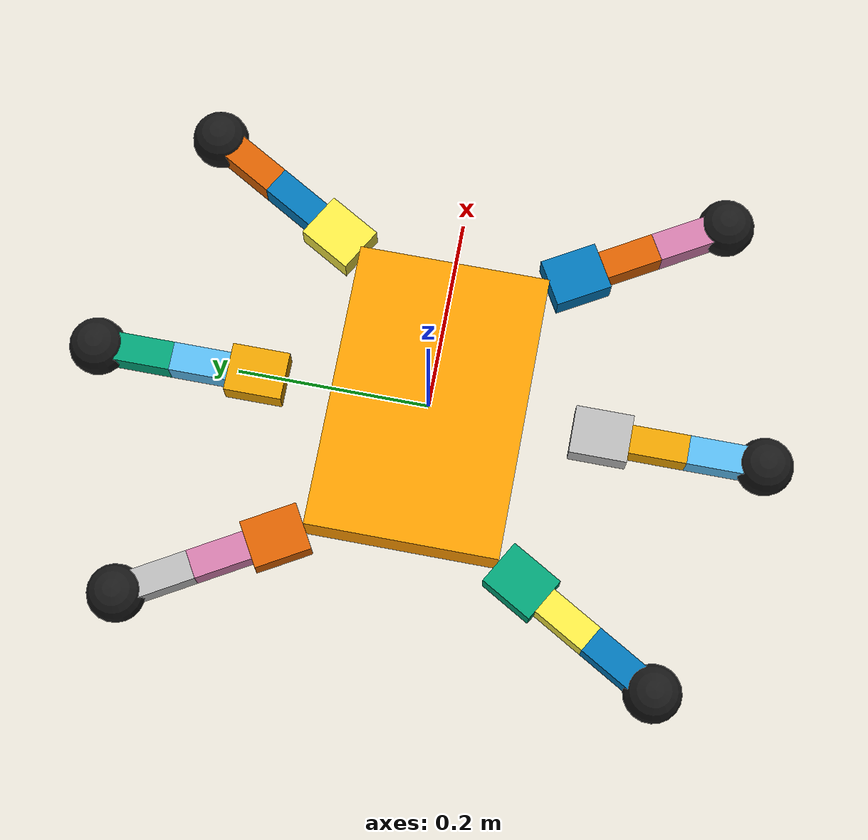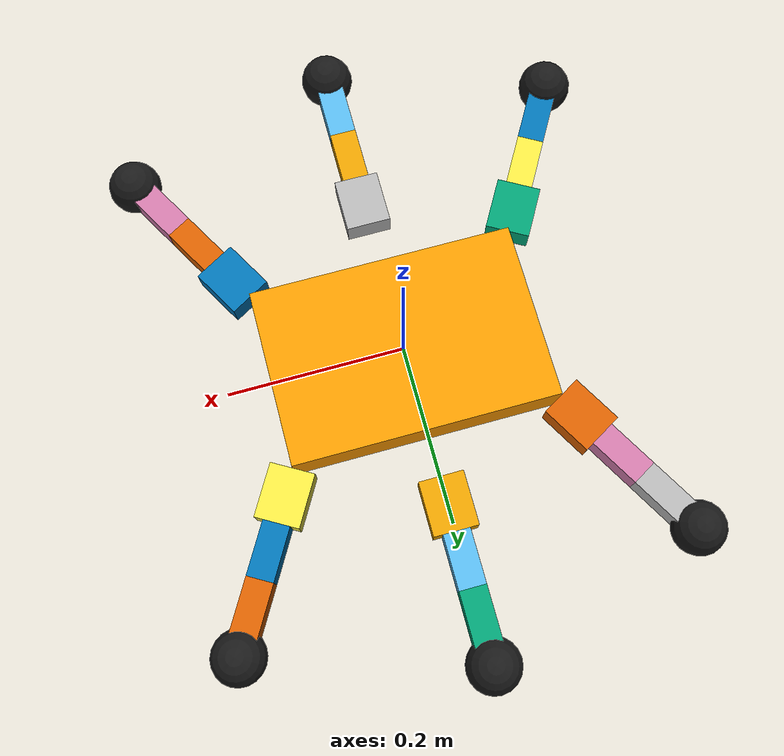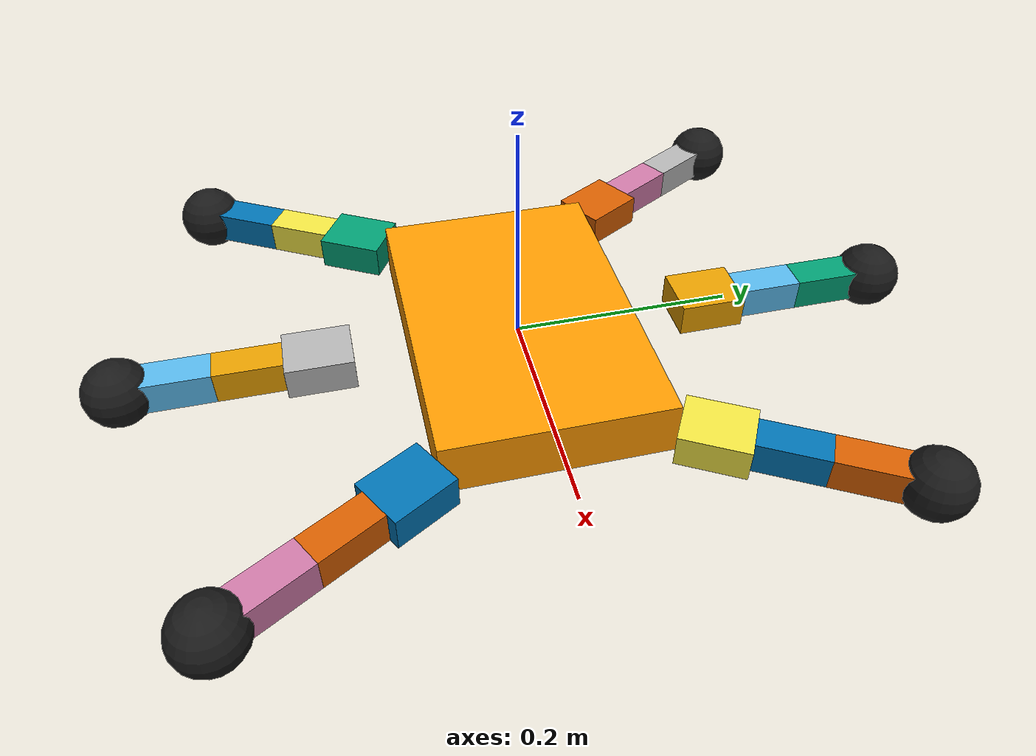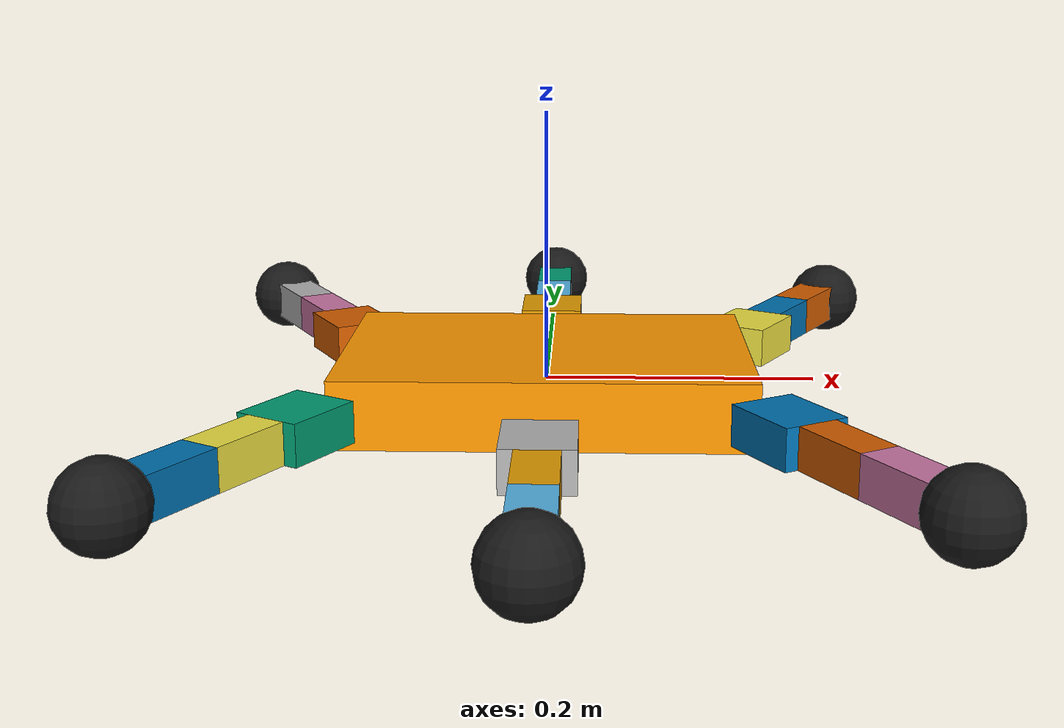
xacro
<?xml version="1.0"?>
<robot name="hexapod" xmlns:xacro="http://wiki.ros.org/xacro">
  <xacro:include filename="$(find robot_description)/properties.urdf.xacro" />

  <!-- base_footprint -->
  <link name="base_footprint" />
  <joint name="base_footprint_joint" type="fixed">
    <parent link="base_footprint" />
    <child link="base_link" />
  </joint>

  <!-- base_link -->
  <link name="base_link">
    <visual>
      <origin xyz="0 0 0" />
      <geometry>
        <box size="0.300 0.200 0.050" />
      </geometry>
      <material name="frame" />
    </visual>
    <collision>
      <geometry>
        <box size="0.300 0.200 0.050" />
      </geometry>
    </collision>
    <inertial>
      <mass value="0.300" />
      <origin xyz="0 0 0" />
      <inertia ixx="0.0021" iyy="0.0046" izz="0.0065"
               ixy="0" ixz="0" iyz="0" />
    </inertial>
  </link>

  <!-- legs -->
  <xacro:macro name="servo" params="index joint_name">
    <gazebo>
      <plugin
        filename="gz-sim-joint-position-controller-system"
        name="gz::sim::systems::JointPositionController">
        <joint_name>${joint_name}</joint_name>
        <use_actuator_msg>true</use_actuator_msg>
        <actuator_number>${index}</actuator_number>
        <cmd_max>${servo_effort_limit}</cmd_max>
        <cmd_min>${-servo_effort_limit}</cmd_min>
        <p_gain>${servo_p_gain}</p_gain>
        <i_gain>0.</i_gain>
        <d_gain>0.</d_gain>
      </plugin>
    </gazebo>
  </xacro:macro>
  <xacro:macro name="leg" params="index reflect xyz rpy">
    <!-- leg_X: fixed to base_link -->
    <!-- TODO for Gazebo add inertial if whole link gets ignored -->
    <link name="leg_${index}" />
    <joint name="base_link__leg_${index}" type="fixed">
      <parent link="base_link" />
      <child link="leg_${index}" />
      <origin xyz="${xyz}" rpy="${rpy}" />
    </joint>

    <!-- leg_Xa: shoulder  -->
    <link name="leg_${index}a">
      <visual>
        <origin xyz="0 ${leg_a_length/2*reflect} 0" />
        <geometry>
          <box size="0.05 ${leg_a_length} 0.03" />
        </geometry>
      </visual>
      <inertial>
        <mass value="0.100" />
        <origin xyz="0 ${leg_a_length/2*reflect} 0" />
        <inertia ixx="0.000028" iyy="0.000028" izz="0.000028"
                 ixy="0"        ixz="0"        iyz="0" />
      </inertial>
    </link>
    <joint name="leg_${index}_base__leg_${index}a" type="revolute">
      <axis xyz="0 0 1" />
      <xacro:if value="${reflect == 1}">
        <limit lower="${joint_a_limit_lower}" upper="${joint_a_limit_upper}"
            effort="${servo_effort_limit}" velocity="${servo_velocity_limit}" />
      </xacro:if>
      <xacro:unless value="${reflect == 1}">
        <limit lower="${-joint_a_limit_upper}" upper="${-joint_a_limit_lower}"
            effort="${servo_effort_limit}" velocity="${servo_velocity_limit}" />
      </xacro:unless>
      <parent link="leg_${index}" />
      <child link="leg_${index}a" />
      <dynamics friction="${servo_static_friction}" damping="${servo_damping_friction}" />
    </joint>
    <!-- leg_Xb: upper segment -->
    <link name="leg_${index}b">
      <visual>
        <origin xyz="0 ${leg_b_length/2*reflect} 0" />
        <geometry>
          <box size="0.03 ${leg_b_length} 0.03" />
        </geometry>
      </visual>
      <inertial>
        <mass value="0.100" />
        <origin xyz="0 ${leg_b_length/2*reflect} 0" />
        <inertia ixx="0.000195" iyy="0.000010" izz="0.000195"
                 ixy="0"        ixz="0"        iyz="0" />
      </inertial>
    </link>
    <joint name="leg_${index}a__leg_${index}b" type="revolute">
      <axis xyz="1 0 0" />
      <xacro:if value="${reflect == 1}">
        <limit lower="${joint_b_limit_lower}" upper="${joint_b_limit_upper}"
            effort="${servo_effort_limit}" velocity="${servo_velocity_limit}" />
      </xacro:if>
      <xacro:unless value="${reflect == 1}">
        <limit lower="${-joint_b_limit_upper}" upper="${-joint_b_limit_lower}"
            effort="${servo_effort_limit}" velocity="${servo_velocity_limit}" />
      </xacro:unless>
      <parent link="leg_${index}a" />
      <child link="leg_${index}b" />
      <origin xyz="0 ${leg_a_length*reflect} 0" />
      <dynamics friction="${servo_static_friction}" damping="${servo_damping_friction}" />
    </joint>
    <!-- leg_Xc: lower segment -->
    <link name="leg_${index}c">
      <visual>
        <origin xyz="0 ${leg_c_length/2*reflect} 0" />
        <geometry>
          <box size="0.03 ${leg_c_length} 0.03" />
        </geometry>
      </visual>
      <visual>
        <origin xyz="0 ${leg_c_length*reflect} 0" />
        <geometry>
          <sphere radius="0.03" />
        </geometry>
        <material name="feet" />
      </visual>
      <collision>
        <origin xyz="0 ${leg_c_length*reflect} 0" />
        <geometry>
          <sphere radius="0.03" />
        </geometry>
        <contact_coefficients mu="0.7" />
      </collision>
      <inertial>
        <mass value="0.100" />
        <origin xyz="0 ${leg_c_length/2*reflect} 0" />
        <inertia ixx="0.000195" iyy="0.000010" izz="0.000195"
                 ixy="0"        ixz="0"        iyz="0" />
      </inertial>
    </link>
    <joint name="leg_${index}b__leg_${index}c" type="revolute">
      <axis xyz="1 0 0" />
      <xacro:if value="${reflect == 1}">
        <limit lower="${joint_c_limit_lower}" upper="${joint_c_limit_upper}"
            effort="${servo_effort_limit}" velocity="${servo_velocity_limit}" />
      </xacro:if>
      <xacro:unless value="${reflect == 1}">
        <limit lower="${-joint_c_limit_upper}" upper="${-joint_c_limit_lower}"
            effort="${servo_effort_limit}" velocity="${servo_velocity_limit}" />
      </xacro:unless>
      <parent link="leg_${index}b" />
      <child link="leg_${index}c" />
      <origin xyz="0 ${leg_b_length*reflect} 0" />
      <dynamics friction="${servo_static_friction}" damping="${servo_damping_friction}" />
    </joint>
    <!-- Link in the foot ball center to easily refer to that point in KDL -->
    <link name="foot_${index}" />
    <joint name="leg_${index}c__foot_${index}" type="fixed">
      <parent link="leg_${index}c" />
      <child link="foot_${index}" />
      <origin xyz="0 ${leg_c_length*reflect} 0" />
    </joint>
    <xacro:servo index="${index*3+0}" joint_name="leg_${index}_base__leg_${index}a" />
    <xacro:servo index="${index*3+1}" joint_name="leg_${index}a__leg_${index}b" />
    <xacro:servo index="${index*3+2}" joint_name="leg_${index}b__leg_${index}c" />
  </xacro:macro>
  <!-- Instantiate the six legs -->
  <xacro:leg index="0" reflect="1"  xyz=" 0.15  0.10 0.0" rpy="0 0 -${leg_spreading_angle}" />
  <xacro:leg index="1" reflect="1"  xyz=" 0.00  0.15 0.0" rpy="0 0 0" />
  <xacro:leg index="2" reflect="1"  xyz="-0.15  0.10 0.0" rpy="0 0 ${leg_spreading_angle}" />
  <xacro:leg index="3" reflect="-1" xyz="-0.15 -0.10 0.0" rpy="0 0 -${leg_spreading_angle}" />
  <xacro:leg index="4" reflect="-1" xyz=" 0.00 -0.15 0.0" rpy="0 0 0" />
  <xacro:leg index="5" reflect="-1" xyz=" 0.15 -0.10 0.0" rpy="0 0 ${leg_spreading_angle}" />

  <!-- Sensors -->
  <link name="imu" />
  <joint name="base_link__imu" type="fixed">
    <parent link="base_link" />
    <child link="imu" />
    <!-- TODO set correct pose -->
    <origin xyz="0 0 0.05" />
  </joint>
  <gazebo reference="imu">
    <sensor name="imu_sensor" type="imu">
      <always_on>1</always_on>
      <update_rate>90</update_rate>
      <visualize>true</visualize>
      <topic>/model/hexapod/imu</topic>
    </sensor>
  </gazebo>

  <!-- Gazebo (simulation only) -->
  <!-- docs: https://github.com/gazebosim/gz-sim/tree/main/src/systems -->
  <gazebo>
    <plugin
      filename="gz-sim-odometry-publisher-system"
      name="gz::sim::systems::OdometryPublisher">
      <odom_publish_frequency>50</odom_publish_frequency>
      <odom_topic>/model/hexapod/odometry</odom_topic>
      <odom_frame>world</odom_frame>
      <robot_base_frame>base_link</robot_base_frame>
    </plugin>
    <plugin
      filename="gz-sim-joint-state-publisher-system"
      name="gz::sim::systems::JointStatePublisher">
      <topic>/model/hexapod/joint_state</topic>
    </plugin>
  </gazebo>
</robot>

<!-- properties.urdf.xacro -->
<robot name="hexapod" xmlns:xacro="http://wiki.ros.org/xacro">
  <!-- Materials -->
  <material name="frame">
    <color rgba="1.0 0.6 0.0 1" />
  </material>
  <material name="feet">
    <color rgba="0.1 0.1 0.1 1" />
  </material>

  <!-- Parameters -->
  <xacro:property name="leg_spreading_angle" value="0.5236" />
  <xacro:property name="leg_a_length" value="0.060" />
  <xacro:property name="leg_b_length" value="0.060" />
  <xacro:property name="leg_c_length" value="0.080" />
  <xacro:property name="servo_velocity_limit" value="5.6" />
  <xacro:property name="servo_effort_limit" value="1.5" />
  <xacro:property name="servo_static_friction" value="0.3" />
  <xacro:property name="servo_damping_friction" value="0.1" />
  <xacro:property name="servo_p_gain" value="17.8" />
  <xacro:property name="joint_a_limit_lower" value="-0.7854" />
  <xacro:property name="joint_a_limit_upper" value="0.7854" />
  <xacro:property name="joint_b_limit_lower" value="-1.047" />
  <xacro:property name="joint_b_limit_upper" value="1.047" />
  <xacro:property name="joint_c_limit_lower" value="-2.618" />
  <xacro:property name="joint_c_limit_upper" value="0" />

</robot>
